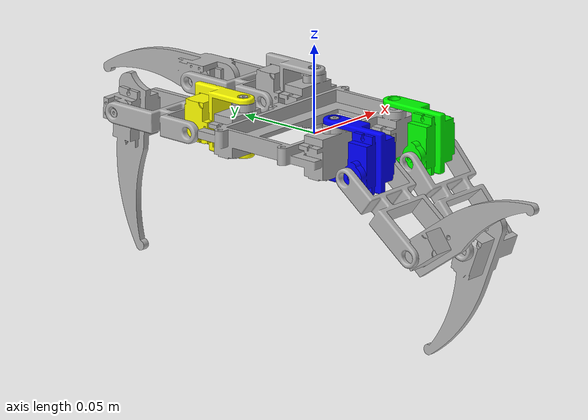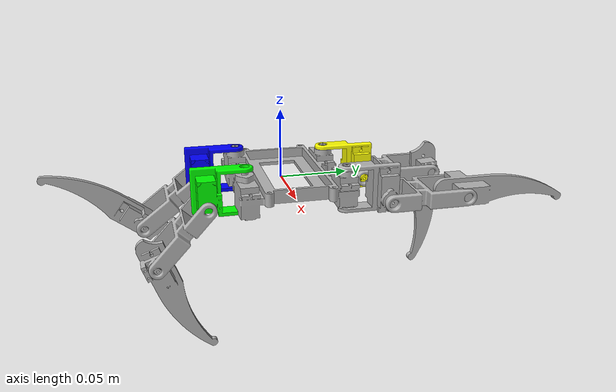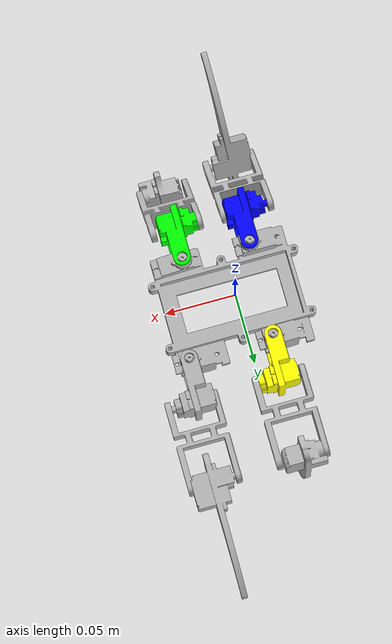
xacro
<?xml version="1.0" ?>
<robot name="Assm" xmlns:xacro="http://www.ros.org/wiki/xacro">

<xacro:include filename="$(find Assm_description)/urdf/materials.xacro" />
<xacro:include filename="$(find Assm_description)/urdf/Assm.ros2control" />
<xacro:include filename="$(find Assm_description)/urdf/Assm.gazebo" />

<link name="base_link">
  <inertial>
    <origin xyz="0.005450285535566075 0.0028327915449261154 0.0011676081391321141" rpy="0 0 0"/>
    <mass value="0.3857637405193081"/>
    <inertia ixx="0.04766" iyy="0.05193" izz="0.09567" ixy="0.0" iyz="0.0" ixz="0.0"/>
  </inertial>
  <visual>
    <origin xyz="0 0 0" rpy="0 0 0"/>
    <geometry>
      <mesh filename="file://$(find Assm_description)/meshes/base_link.stl" scale="0.001 0.001 0.001"/>
    </geometry>
    <material name="silver"/>
  </visual>
  <collision>
    <origin xyz="0 0 0" rpy="0 0 0"/>
    <geometry>
      <mesh filename="file://$(find Assm_description)/meshes/base_link.stl" scale="0.001 0.001 0.001"/>
    </geometry>
  </collision>
</link>

<link name="imu_link">
    <inertial>
        <mass value="0.001"/>
        <inertia ixx="0.000001" ixy="0.0" ixz="0.0" iyy="0.000001" iyz="0.0" izz="0.000001"/>
    </inertial>
    <visual>
        <geometry>
            <box size="0.001 0.001 0.001"/>
        </geometry>
    </visual>
</link>

<joint name="imu_joint" type="fixed">
    <parent link="base_link"/>
    <child link="imu_link"/>
    <origin xyz="0 0 0.01" rpy="0 0 0"/>
</joint>

<link name="limb_1_1_1">
  <inertial>
    <origin xyz="-0.002315327637535468 -0.024653738379607937 -0.014940106390473835" rpy="0 0 0"/>
    <mass value="0.0923182155552708"/>
    <inertia ixx="0.00125" iyy="0.00146" izz="0.00177" ixy="0.0" iyz="0.0" ixz="0.0"/>
  </inertial>
  <visual>
    <origin xyz="-0.028896 0.031658 -0.016594" rpy="0 0 0"/>
    <geometry>
      <mesh filename="file://$(find Assm_description)/meshes/limb_1_1_1.stl" scale="0.001 0.001 0.001"/>
    </geometry>
    <material name="green"/>
  </visual>
  <collision>
    <origin xyz="-0.028896 0.031658 -0.016594" rpy="0 0 0"/>
    <geometry>
      <mesh filename="file://$(find Assm_description)/meshes/limb_1_1_1.stl" scale="0.001 0.001 0.001"/>
    </geometry>
  </collision>
</link>

<link name="limb_1_1_2">
  <inertial>
    <origin xyz="-0.0023144420499072935 -0.024654186463004508 -0.017789845863430343" rpy="0 0 0"/>
    <mass value="0.0923182155552708"/>
    <inertia ixx="0.00125" iyy="0.00146" izz="0.00177" ixy="0.0" iyz="0.0" ixz="0.0"/>
  </inertial>
  <visual>
    <origin xyz="0.018943 0.030748 -0.019933" rpy="0 0 0"/>
    <geometry>
      <mesh filename="file://$(find Assm_description)/meshes/limb_1_1_2.stl" scale="0.001 0.001 0.001"/>
    </geometry>
    <material name="blue"/>
  </visual>
  <collision>
    <origin xyz="0.018943 0.030748 -0.019933" rpy="0 0 0"/>
    <geometry>
      <mesh filename="file://$(find Assm_description)/meshes/limb_1_1_2.stl" scale="0.001 0.001 0.001"/>
    </geometry>
  </collision>
</link>

<link name="limb_1_1_3">
  <inertial>
    <origin xyz="0.0023148998563176024 0.024654295925299996 -0.017790208656825818" rpy="0 0 0"/>
    <mass value="0.0923182155552708"/>
    <inertia ixx="0.00125" iyy="0.00146" izz="0.00177" ixy="0.0" iyz="0.0" ixz="0.0"/>
  </inertial>
  <visual>
    <origin xyz="0.016577 -0.036354 -0.017283" rpy="0 0 0"/>
    <geometry>
      <mesh filename="file://$(find Assm_description)/meshes/limb_1_1_3.stl" scale="0.001 0.001 0.001"/>
    </geometry>
    <material name="yellow"/>
  </visual>
  <collision>
    <origin xyz="0.016577 -0.036354 -0.017283" rpy="0 0 0"/>
    <geometry>
      <mesh filename="file://$(find Assm_description)/meshes/limb_1_1_3.stl" scale="0.001 0.001 0.001"/>
    </geometry>
  </collision>
</link>

<link name="limb_1_1_4">
  <inertial>
    <origin xyz="0.002314486121601317 0.024654358529365344 -0.017790088860185568" rpy="0 0 0"/>
    <mass value="0.0923182155552708"/>
    <inertia ixx="0.00125" iyy="0.00146" izz="0.00177" ixy="0.0" iyz="0.0" ixz="0.0"/>
  </inertial>
  <visual>
    <origin xyz="-0.04316 -0.037884 -0.019624" rpy="0 0 0"/>
    <geometry>
      <mesh filename="file://$(find Assm_description)/meshes/limb_1_1_4.stl" scale="0.001 0.001 0.001"/>
    </geometry>
    <material name="silver"/>
  </visual>
  <collision>
    <origin xyz="-0.04316 -0.037884 -0.019624" rpy="0 0 0"/>
    <geometry>
      <mesh filename="file://$(find Assm_description)/meshes/limb_1_1_4.stl" scale="0.001 0.001 0.001"/>
    </geometry>
  </collision>
</link>

<link name="limb_2_1_1">
  <inertial>
    <origin xyz="0.01794053600284727 -0.01787835604374112 -0.01945673024885675" rpy="0 0 0"/>
    <mass value="0.057466860924570075"/>
    <inertia ixx="0.00166" iyy="0.00185" izz="0.00333" ixy="0.0" iyz="0.0" ixz="0.0"/>
  </inertial>
  <visual>
    <origin xyz="-0.008449 0.059241 0.003557" rpy="0 0 0"/>
    <geometry>
      <mesh filename="file://$(find Assm_description)/meshes/limb_2_1_1.stl" scale="0.001 0.001 0.001"/>
    </geometry>
    <material name="silver"/>
  </visual>
  <collision>
    <origin xyz="-0.008449 0.059241 0.003557" rpy="0 0 0"/>
    <geometry>
      <mesh filename="file://$(find Assm_description)/meshes/limb_2_1_1.stl" scale="0.001 0.001 0.001"/>
    </geometry>
  </collision>
</link>

<link name="limb_2_1_2">
  <inertial>
    <origin xyz="0.014940421590430016 -0.021036197637545002 -0.01599010576032387" rpy="0 0 0"/>
    <mass value="0.057466860924570075"/>
    <inertia ixx="0.00166" iyy="0.00185" izz="0.00333" ixy="0.0" iyz="0.0" ixz="0.0"/>
  </inertial>
  <visual>
    <origin xyz="0.039389 0.058331 0.003068" rpy="0 0 0"/>
    <geometry>
      <mesh filename="file://$(find Assm_description)/meshes/limb_2_1_2.stl" scale="0.001 0.001 0.001"/>
    </geometry>
    <material name="silver"/>
  </visual>
  <collision>
    <origin xyz="0.039389 0.058331 0.003068" rpy="0 0 0"/>
    <geometry>
      <mesh filename="file://$(find Assm_description)/meshes/limb_2_1_2.stl" scale="0.001 0.001 0.001"/>
    </geometry>
  </collision>
</link>

<link name="limb_2_1_3">
  <inertial>
    <origin xyz="-0.017939963784019828 0.026423584252083993 4.683265387196711e-07" rpy="0 0 0"/>
    <mass value="0.057466860924570075"/>
    <inertia ixx="0.00166" iyy="0.00185" izz="0.00333" ixy="0.0" iyz="0.0" ixz="0.0"/>
  </inertial>
  <visual>
    <origin xyz="-0.003869 -0.063937 0.005719" rpy="0 0 0"/>
    <geometry>
      <mesh filename="file://$(find Assm_description)/meshes/limb_2_1_3.stl" scale="0.001 0.001 0.001"/>
    </geometry>
    <material name="silver"/>
  </visual>
  <collision>
    <origin xyz="-0.003869 -0.063937 0.005719" rpy="0 0 0"/>
    <geometry>
      <mesh filename="file://$(find Assm_description)/meshes/limb_2_1_3.stl" scale="0.001 0.001 0.001"/>
    </geometry>
  </collision>
</link>

<link name="limb_2_1_4">
  <inertial>
    <origin xyz="-0.014940377518736232 0.026423646856156266 -4.305966192674933e-07" rpy="0 0 0"/>
    <mass value="0.057466860924570075"/>
    <inertia ixx="0.00166" iyy="0.00185" izz="0.00333" ixy="0.0" iyz="0.0" ixz="0.0"/>
  </inertial>
  <visual>
    <origin xyz="-0.060756 -0.065467 0.003377" rpy="0 0 0"/>
    <geometry>
      <mesh filename="file://$(find Assm_description)/meshes/limb_2_1_4.stl" scale="0.001 0.001 0.001"/>
    </geometry>
    <material name="silver"/>
  </visual>
  <collision>
    <origin xyz="-0.060756 -0.065467 0.003377" rpy="0 0 0"/>
    <geometry>
      <mesh filename="file://$(find Assm_description)/meshes/limb_2_1_4.stl" scale="0.001 0.001 0.001"/>
    </geometry>
  </collision>
</link>

<link name="limb_1_3_1">
  <inertial>
    <origin xyz="-0.016567762208992986 0.004546209816010241 -0.012258496357176497" rpy="0 0 0"/>
    <mass value="0.10238612425988404"/>
    <inertia ixx="0.00077" iyy="0.00556" izz="0.00579" ixy="0.0" iyz="0.0" ixz="0.0"/>
  </inertial>
  <visual>
    <origin xyz="-0.043949 0.096455 0.044055" rpy="0 0 0"/>
    <geometry>
      <mesh filename="file://$(find Assm_description)/meshes/limb_1_3_1.stl" scale="0.001 0.001 0.001"/>
    </geometry>
    <material name="silver"/>
  </visual>
  <collision>
    <origin xyz="-0.043949 0.096455 0.044055" rpy="0 0 0"/>
    <geometry>
      <mesh filename="file://$(find Assm_description)/meshes/limb_1_3_1.stl" scale="0.001 0.001 0.001"/>
    </geometry>
  </collision>
</link>

<link name="limb_1_3_2">
  <inertial>
    <origin xyz="-0.016567876621383898 -0.010533117865850233 0.007744010163671957" rpy="0 0 0"/>
    <mass value="0.10238612425988404"/>
    <inertia ixx="0.00077" iyy="0.00556" izz="0.00579" ixy="0.0" iyz="0.0" ixz="0.0"/>
  </inertial>
  <visual>
    <origin xyz="0.009889 0.102118 0.036351" rpy="0 0 0"/>
    <geometry>
      <mesh filename="file://$(find Assm_description)/meshes/limb_1_3_2.stl" scale="0.001 0.001 0.001"/>
    </geometry>
    <material name="silver"/>
  </visual>
  <collision>
    <origin xyz="0.009889 0.102118 0.036351" rpy="0 0 0"/>
    <geometry>
      <mesh filename="file://$(find Assm_description)/meshes/limb_1_3_2.stl" scale="0.001 0.001 0.001"/>
    </geometry>
  </collision>
</link>

<link name="limb_1_3_3">
  <inertial>
    <origin xyz="0.016568334427794235 0.000850356744703698 -0.013045734619034697" rpy="0 0 0"/>
    <mass value="0.10238612425988404"/>
    <inertia ixx="0.00077" iyy="0.00556" izz="0.00579" ixy="0.0" iyz="0.0" ixz="0.0"/>
  </inertial>
  <visual>
    <origin xyz="0.031631 -0.118937 0.005719" rpy="0 0 0"/>
    <geometry>
      <mesh filename="file://$(find Assm_description)/meshes/limb_1_3_3.stl" scale="0.001 0.001 0.001"/>
    </geometry>
    <material name="silver"/>
  </visual>
  <collision>
    <origin xyz="0.031631 -0.118937 0.005719" rpy="0 0 0"/>
    <geometry>
      <mesh filename="file://$(find Assm_description)/meshes/limb_1_3_3.stl" scale="0.001 0.001 0.001"/>
    </geometry>
  </collision>
</link>

<link name="limb_1_3_4">
  <inertial>
    <origin xyz="0.016567920693077623 0.01307413780451154 1.9095796676761242e-05" rpy="0 0 0"/>
    <mass value="0.10238612425988404"/>
    <inertia ixx="0.00077" iyy="0.00556" izz="0.00579" ixy="0.0" iyz="0.0" ixz="0.0"/>
  </inertial>
  <visual>
    <origin xyz="-0.031256 -0.120467 0.003377" rpy="0 0 0"/>
    <geometry>
      <mesh filename="file://$(find Assm_description)/meshes/limb_1_3_4.stl" scale="0.001 0.001 0.001"/>
    </geometry>
    <material name="silver"/>
  </visual>
  <collision>
    <origin xyz="-0.031256 -0.120467 0.003377" rpy="0 0 0"/>
    <geometry>
      <mesh filename="file://$(find Assm_description)/meshes/limb_1_3_4.stl" scale="0.001 0.001 0.001"/>
    </geometry>
  </collision>
</link>

<joint name="Revolute_Coxa_1" type="revolute">
  <origin xyz="-0.018943 -0.030748 0.019933" rpy="0 0 0"/>
  <parent link="base_link"/>
  <child link="limb_1_1_2"/>
  <axis xyz="0.0 0.0 1.0"/>
  <limit lower="-1.57" upper="1.57" effort="10.0" velocity="5.0"/>
  <dynamics damping="1.0" friction="0.2"/>
  <param name="initial_position">0.00</param>
</joint>

<joint name="Revolute_Coxa_2" type="revolute">
  <origin xyz="-0.016577 0.036354 0.017283" rpy="0 0 0"/>
  <parent link="base_link"/>
  <child link="limb_1_1_3"/>
  <axis xyz="0.0 -0.0 1.0"/>
  <limit lower="-1.57" upper="1.57" effort="10.0" velocity="5.0"/>
  <dynamics damping="1.0" friction="0.2"/>
  <param name="initial_position">0.00</param>
</joint>

<joint name="Revolute_Coxa_3" type="revolute">
  <origin xyz="0.028896 -0.031658 0.016594" rpy="0 0 0"/>
  <parent link="base_link"/>
  <child link="limb_1_1_1"/>
  <axis xyz="-0.0 0.0 1.0"/>
  <limit lower="-1.57" upper="1.57" effort="10.0" velocity="5.0"/>
  <dynamics damping="1.0" friction="0.2"/>
  <param name="initial_position">0.00</param>
</joint>

<joint name="Revolute_Coxa_4" type="revolute">
  <origin xyz="0.04316 0.037884 0.019624" rpy="0 0 0"/>
  <parent link="base_link"/>
  <child link="limb_1_1_4"/>
  <axis xyz="0.0 -0.0 1.0"/>
  <limit lower="-1.57" upper="1.57" effort="10.0" velocity="5.0"/>
  <dynamics damping="1.0" friction="0.2"/>
  <param name="initial_position">0.00</param>
</joint>

<joint name="Revolute_Femur_1" type="revolute">
  <origin xyz="-0.020446 -0.027583 -0.023001" rpy="0 0 0"/>
  <parent link="limb_1_1_2"/>
  <child link="limb_2_1_2"/>
  <axis xyz="-1.0 -0.0 0.0"/>
  <limit lower="-1.6" upper="1.6" effort="10.0" velocity="5.0"/>
  <dynamics damping="1.0" friction="0.2"/>
  <param name="initial_position">0.62</param>
</joint>

<joint name="Revolute_Femur_2" type="revolute">
  <origin xyz="0.020446 0.027583 -0.023002" rpy="0 0 0"/>
  <parent link="limb_1_1_3"/>
  <child link="limb_2_1_3"/>
  <axis xyz="1.0 0.0 -0.0"/>
  <limit lower="-1.6" upper="1.6" effort="10.0" velocity="5.0"/>
  <dynamics damping="1.0" friction="0.2"/>
  <param name="initial_position">0.00</param>
</joint>

<joint name="Revolute_Femur_3" type="revolute">
  <origin xyz="-0.020447 -0.027583 -0.023001" rpy="0 0 0"/>
  <parent link="limb_1_1_1"/>
  <child link="limb_2_1_1"/>
  <axis xyz="-1.0 -0.0 -0.0"/>
  <limit lower="-1.6" upper="1.6" effort="10.0" velocity="5.0"/>
  <dynamics damping="1.0" friction="0.2"/>
  <param name="initial_position">0.83</param>
</joint>

<joint name="Revolute_Femur_4" type="revolute">
  <origin xyz="0.020447 0.027583 -0.023001" rpy="0 0 0"/>
  <parent link="limb_1_1_4"/>
  <child link="limb_2_1_4"/>
  <axis xyz="1.0 0.0 -0.0"/>
  <limit lower="-1.6" upper="1.6" effort="10.0" velocity="5.0"/>
  <dynamics damping="1.0" friction="0.2"/>
  <param name="initial_position">0.00</param>
</joint>

<joint name="Revolute_Tibia_1" type="revolute">
  <origin xyz="0.0295 -0.043787 -0.033283" rpy="0 0 0"/>
  <parent link="limb_2_1_2"/>
  <child link="limb_1_3_2"/>
  <axis xyz="1.0 0.0 -0.0"/>
  <limit lower="-10.0" upper="10.0" effort="10.0" velocity="5.0"/>
  <dynamics damping="1.0" friction="0.2"/>
  <param name="initial_position">2.80</param>
</joint>

<joint name="Revolute_Tibia_2" type="revolute">
  <origin xyz="-0.0355 0.055 0.0" rpy="0 0 0"/>
  <parent link="limb_2_1_3"/>
  <child link="limb_1_3_3"/>
  <axis xyz="-1.0 -0.0 0.0"/>
  <limit lower="-2.0" upper="2.0" effort="10.0" velocity="5.0"/>
  <dynamics damping="1.0" friction="0.2"/>
  <param name="initial_position">0.00</param>
</joint>

<joint name="Revolute_Tibia_3" type="revolute">
  <origin xyz="0.0355 -0.037214 -0.040498" rpy="0 0 0"/>
  <parent link="limb_2_1_1"/>
  <child link="limb_1_3_1"/>
  <axis xyz="1.0 0.0 0.0"/>
  <limit lower="-2.0" upper="2.0" effort="10.0" velocity="5.0"/>
  <dynamics damping="1.0" friction="0.2"/>
  <param name="initial_position">0.45</param>
</joint>

<joint name="Revolute_Tibia_4" type="revolute">
  <origin xyz="-0.0295 0.055 0.0" rpy="0 0 0"/>
  <parent link="limb_2_1_4"/>
  <child link="limb_1_3_4"/>
  <axis xyz="-1.0 -0.0 0.0"/>
  <limit lower="-2.0" upper="2.0" effort="10.0" velocity="5.0"/>
  <dynamics damping="1.0" friction="0.2"/>
  <param name="initial_position">1.55</param>
</joint>

<gazebo>
  <plugin filename="libgazebo_ros2_control.so" name="gazebo_ros2_control">
    <parameters>$(find Assm_description)/config/ros_controller.yaml</parameters>
  </plugin>
</gazebo>

<gazebo reference="imu_link">
    <sensor name="imu_sensor" type="imu">
        <always_on>true</always_on>
        <update_rate>100.0</update_rate>
        <visualize>false</visualize>

        <plugin name="imu_plugin" filename="libgazebo_ros_imu_sensor.so">
            <ros>
                <namespace>/</namespace>
                <argument>imu/data</argument>
            </ros>
            <initial_orientation_as_reference>false</initial_orientation_as_reference>
        </plugin>

        <imu>
            <angular_velocity>
                <x>0.0002 0.0002 0.0002</x>
                <y>0.0002 0.0002 0.0002</y>
                <z>0.0002 0.0002 0.0002</z>
            </angular_velocity>
            <linear_acceleration>
                <x>0.002 0.002 0.002</x>
                <y>0.002 0.002 0.002</y>
                <z>0.002 0.002 0.002</z>
            </linear_acceleration>
        </imu>
    </sensor>
</gazebo>

</robot>

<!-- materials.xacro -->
<robot name="Assm" xmlns:xacro="http://www.ros.org/wiki/xacro" >

<material name="silver">
  <color rgba="0.700 0.700 0.700 1.000"/>
</material>
<material name="red">
  <color rgba="1.0 0.0 0.0 1.0"/>
</material>
<material name="green">
  <color rgba="0.0 1.0 0.0 1.0"/>
</material>
<material name="blue">
  <color rgba="0.0 0.0 1.0 1.0"/>
</material>
<material name="yellow">
  <color rgba="1.0 1.0 0.0 1.0"/>
</material>
</robot>

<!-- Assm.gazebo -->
<robot name="Assm" xmlns:xacro="http://www.ros.org/wiki/xacro">

<xacro:property name="body_color" value="Gazebo/Red" />
<xacro:property name="body_color1" value="Gazebo/blue" />
<xacro:property name="body_color2" value="Gazebo/yellow" />
<xacro:property name="body_color3" value="Gazebo/green" />

<!-- Global Gazebo Settings - CRITICAL FIXES -->
<gazebo>
  <static>false</static>
  <gravity>true</gravity>
  <selfCollide>true</selfCollide>
</gazebo>

<!-- Base Link Gazebo Properties -->
<gazebo reference="base_link">
  <material>${body_color}</material>
  <mu1>1.0</mu1>
  <mu2>1.0</mu2>
  <kp>1000.0</kp>
  <kd>1</kd>
  <minDepth>0.001</minDepth>
  <maxVel>0.1</maxVel>
</gazebo>

<!-- Coxa Links -->
<gazebo reference="limb_1_1_1">
  <material>${body_color}</material>
  <mu1>02</mu1>
  <mu2>02</mu2>
  <kp>1000.0</kp>
  <kd>1</kd>
  <minDepth>0.001</minDepth>
</gazebo>

<gazebo reference="limb_1_1_2">
  <material>${body_color}</material>
  <mu1>02</mu1>
  <mu2>02</mu2>
  <kp>1000.0</kp>
  <kd>1</kd>
  <minDepth>0.001</minDepth>
</gazebo>

<gazebo reference="limb_1_1_3">
  <material>${body_color}</material>
  <mu1>02</mu1>
  <mu2>02</mu2>
  <kp>1000.0</kp>
  <kd>1</kd>
  <minDepth>0.001</minDepth>
</gazebo>

<gazebo reference="limb_1_1_4">
  <material>${body_color}</material>
  <mu1>02</mu1>
  <mu2>02</mu2>
  <kp>1000.0</kp>
  <kd>1</kd>
  <minDepth>0.001</minDepth>
</gazebo>

<!-- Femur Links -->
<gazebo reference="limb_2_1_1">
  <material>${body_color}</material>
  <mu1>02</mu1>
  <mu2>02</mu2>
  <kp>1000.0</kp>
  <kd>1</kd>
  <minDepth>0.001</minDepth>
</gazebo>

<gazebo reference="limb_2_1_2">
  <material>${body_color}</material>
  <mu1>02</mu1>
  <mu2>02</mu2>
  <kp>1000.0</kp>
  <kd>1</kd>
  <minDepth>0.001</minDepth>
</gazebo>

<gazebo reference="limb_2_1_3">
  <material>${body_color}</material>
  <mu1>02</mu1>
  <mu2>02</mu2>
  <kp>1000.0</kp>
  <kd>1</kd>
  <minDepth>0.001</minDepth>
</gazebo>

<gazebo reference="limb_2_1_4">
  <material>${body_color}</material>
  <mu1>02</mu1>
  <mu2>02</mu2>
  <kp>1000.0</kp>
  <kd>1</kd>
  <minDepth>0.001</minDepth>
</gazebo>

<!-- Tibia Links with Foot Contact Properties -->
<gazebo reference="limb_1_3_1">
  <material>${body_color}</material>
  <mu1>250</mu1>
  <mu2>100</mu2>
  <kp>1000.0</kp>
  <kd>1</kd>
  <minDepth>0.001</minDepth>
  <maxVel>0.1</maxVel>
</gazebo>

<gazebo reference="limb_1_3_2">
  <material>${body_color}</material>
  <mu1>250</mu1>
  <mu2>100</mu2>
  <kp>1000.0</kp>
  <kd>1</kd>
  <minDepth>0.001</minDepth>
  <maxVel>0.1</maxVel>
</gazebo>

<gazebo reference="limb_1_3_3">
  <material>${body_color}</material>
  <mu1>250</mu1>
  <mu2>100</mu2>
  <kp>1000.0</kp>
  <kd>1</kd>
  <minDepth>0.001</minDepth>
  <maxVel>0.1</maxVel>
</gazebo>

<gazebo reference="limb_1_3_4">
  <material>${body_color}</material>
  <mu1>250</mu1>
  <mu2>100</mu2>
  <kp>1000.0</kp>
  <kd>1</kd>
  <minDepth>0.001</minDepth>
  <maxVel>0.1</maxVel>
</gazebo>

<!-- Joint Physics with Higher Damping -->
<gazebo reference="Revolute_Coxa_1">
  <implicitSpringDamper>true</implicitSpringDamper>
  <springStiffness>0</springStiffness>
  <springReference>0</springReference>
  <provideFeedback>true</provideFeedback>
</gazebo>

<gazebo reference="Revolute_Coxa_2">
  <implicitSpringDamper>true</implicitSpringDamper>
  <springStiffness>0</springStiffness>
  <springReference>0</springReference>
  <provideFeedback>true</provideFeedback>
</gazebo>

<gazebo reference="Revolute_Coxa_3">
  <implicitSpringDamper>true</implicitSpringDamper>
  <springStiffness>0</springStiffness>
  <springReference>0</springReference>
  <provideFeedback>true</provideFeedback>
</gazebo>

<gazebo reference="Revolute_Coxa_4">
  <implicitSpringDamper>true</implicitSpringDamper>
  <springStiffness>0</springStiffness>
  <springReference>0</springReference>
  <provideFeedback>true</provideFeedback>
</gazebo>

<gazebo reference="Revolute_Femur_1">
  <implicitSpringDamper>true</implicitSpringDamper>
  <springStiffness>0</springStiffness>
  <springReference>0</springReference>
  <provideFeedback>true</provideFeedback>
</gazebo>

<gazebo reference="Revolute_Femur_2">
  <implicitSpringDamper>true</implicitSpringDamper>
  <springStiffness>0</springStiffness>
  <springReference>0</springReference>
  <provideFeedback>true</provideFeedback>
</gazebo>

<gazebo reference="Revolute_Femur_3">
  <implicitSpringDamper>true</implicitSpringDamper>
  <springStiffness>0</springStiffness>
  <springReference>0</springReference>
  <provideFeedback>true</provideFeedback>
</gazebo>

<gazebo reference="Revolute_Femur_4">
  <implicitSpringDamper>true</implicitSpringDamper>
  <springStiffness>0</springStiffness>
  <springReference>0</springReference>
  <provideFeedback>true</provideFeedback>
</gazebo>

<gazebo reference="Revolute_Tibia_1">
  <implicitSpringDamper>true</implicitSpringDamper>
  <springStiffness>0</springStiffness>
  <springReference>0</springReference>
  <provideFeedback>true</provideFeedback>
</gazebo>

<gazebo reference="Revolute_Tibia_2">
  <implicitSpringDamper>true</implicitSpringDamper>
  <springStiffness>0</springStiffness>
  <springReference>0</springReference>
  <provideFeedback>true</provideFeedback>
</gazebo>

<gazebo reference="Revolute_Tibia_3">
  <implicitSpringDamper>true</implicitSpringDamper>
  <springStiffness>0</springStiffness>
  <springReference>0</springReference>
  <provideFeedback>true</provideFeedback>
</gazebo>

<gazebo reference="Revolute_Tibia_4">
  <implicitSpringDamper>true</implicitSpringDamper>
  <springStiffness>0</springStiffness>
  <springReference>0</springReference>
  <provideFeedback>true</provideFeedback>
</gazebo>

</robot>
